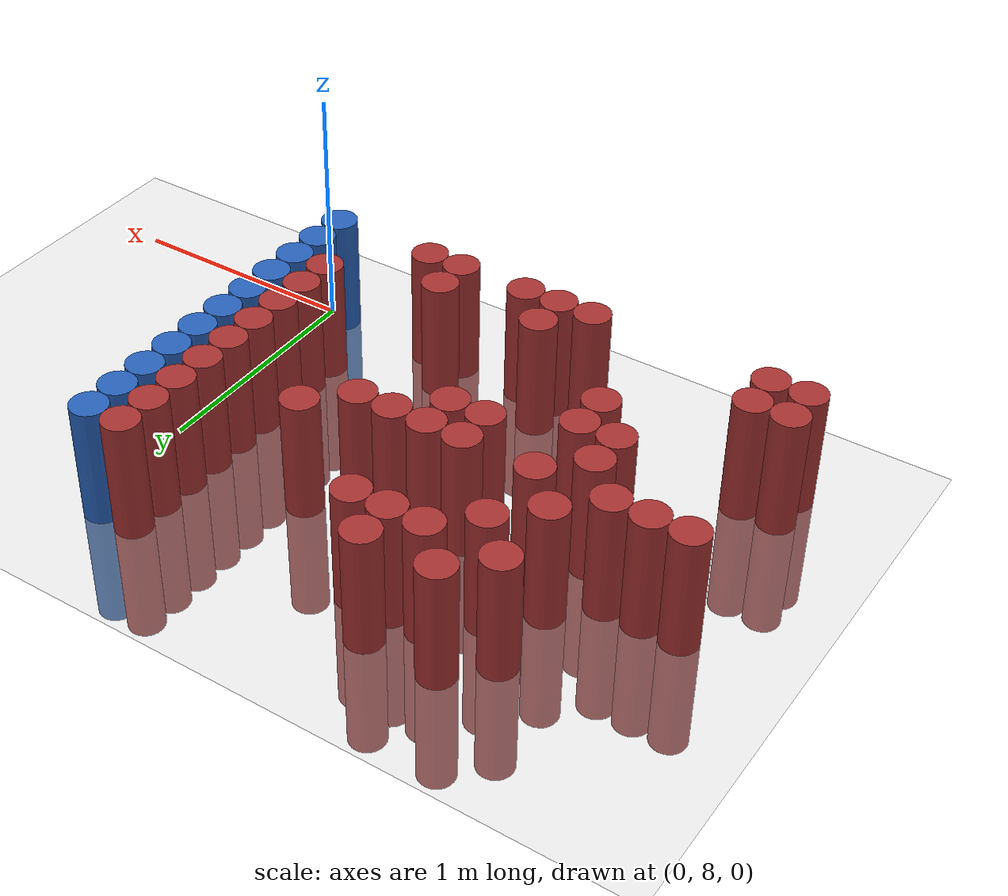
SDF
<sdf version="1.6">
 <world name="default">
  <model name="ground_plane">
   <static>1</static>
   <link name="link">
    <collision name="collision">
     <geometry><plane><normal>0 0 1</normal><size>100 100</size></plane></geometry>
     <surface><friction><ode><mu>100</mu><mu2>50</mu2></ode></friction></surface>
    </collision>
    <visual name="visual">
     <cast_shadows>0</cast_shadows>
     <geometry><plane><normal>0 0 1</normal><size>100 100</size></plane></geometry>
     <material>
      <script><uri>file://media/materials/scripts/gazebo.material</uri><name>Gazebo/Grey</name></script>
     </material>
    </visual>
   </link>
  </model>
  <model name="unit_cylinder_183">
   <static>1</static>
   <pose>-2.175000 8.025000 0.000000 0.000000 0.000000 0.000000</pose>
   <link name="link">
    <inertial>
     <mass>1</mass>
     <inertia><ixx>0.145833</ixx><ixy>0</ixy><ixz>0</ixz><iyy>0.145833</iyy><iyz>0</iyz><izz>0.125</izz></inertia>
    </inertial>
    <collision name="collision">
     <geometry><cylinder><radius>0.075000</radius><length>1</length></cylinder></geometry>
    </collision>
    <visual name="visual">
     <geometry><cylinder><radius>0.075000</radius><length>1</length></cylinder></geometry>
     <material>
      <ambient>0.648000 0.192000 0.192000 1</ambient>
      <diffuse>0.648000 0.192000 0.192000 1</diffuse>
     </material>
     <material>
      <script><name>Gazebo/Grey</name><uri>file://media/materials/scripts/gazebo.material</uri></script>
     </material>
    </visual>
   </link>
  </model>
  <model name="unit_cylinder_184">
   <static>1</static>
   <pose>-2.175000 8.175000 0.000000 0.000000 0.000000 0.000000</pose>
   <link name="link">
    <inertial>
     <mass>1</mass>
     <inertia><ixx>0.145833</ixx><ixy>0</ixy><ixz>0</ixz><iyy>0.145833</iyy><iyz>0</iyz><izz>0.125</izz></inertia>
    </inertial>
    <collision name="collision">
     <geometry><cylinder><radius>0.075000</radius><length>1</length></cylinder></geometry>
    </collision>
    <visual name="visual">
     <geometry><cylinder><radius>0.075000</radius><length>1</length></cylinder></geometry>
     <material>
      <ambient>0.648000 0.192000 0.192000 1</ambient>
      <diffuse>0.648000 0.192000 0.192000 1</diffuse>
     </material>
     <material>
      <script><name>Gazebo/Grey</name><uri>file://media/materials/scripts/gazebo.material</uri></script>
     </material>
    </visual>
   </link>
  </model>
  <model name="unit_cylinder_185">
   <static>1</static>
   <pose>-2.175000 8.925000 0.000000 0.000000 0.000000 0.000000</pose>
   <link name="link">
    <inertial>
     <mass>1</mass>
     <inertia><ixx>0.145833</ixx><ixy>0</ixy><ixz>0</ixz><iyy>0.145833</iyy><iyz>0</iyz><izz>0.125</izz></inertia>
    </inertial>
    <collision name="collision">
     <geometry><cylinder><radius>0.075000</radius><length>1</length></cylinder></geometry>
    </collision>
    <visual name="visual">
     <geometry><cylinder><radius>0.075000</radius><length>1</length></cylinder></geometry>
     <material>
      <ambient>0.648000 0.192000 0.192000 1</ambient>
      <diffuse>0.648000 0.192000 0.192000 1</diffuse>
     </material>
     <material>
      <script><name>Gazebo/Grey</name><uri>file://media/materials/scripts/gazebo.material</uri></script>
     </material>
    </visual>
   </link>
  </model>
  <model name="unit_cylinder_196">
   <static>1</static>
   <pose>-2.025000 8.025000 0.000000 0.000000 0.000000 0.000000</pose>
   <link name="link">
    <inertial>
     <mass>1</mass>
     <inertia><ixx>0.145833</ixx><ixy>0</ixy><ixz>0</ixz><iyy>0.145833</iyy><iyz>0</iyz><izz>0.125</izz></inertia>
    </inertial>
    <collision name="collision">
     <geometry><cylinder><radius>0.075000</radius><length>1</length></cylinder></geometry>
    </collision>
    <visual name="visual">
     <geometry><cylinder><radius>0.075000</radius><length>1</length></cylinder></geometry>
     <material>
      <ambient>0.648000 0.192000 0.192000 1</ambient>
      <diffuse>0.648000 0.192000 0.192000 1</diffuse>
     </material>
     <material>
      <script><name>Gazebo/Grey</name><uri>file://media/materials/scripts/gazebo.material</uri></script>
     </material>
    </visual>
   </link>
  </model>
  <model name="unit_cylinder_197">
   <static>1</static>
   <pose>-2.025000 8.175000 0.000000 0.000000 0.000000 0.000000</pose>
   <link name="link">
    <inertial>
     <mass>1</mass>
     <inertia><ixx>0.145833</ixx><ixy>0</ixy><ixz>0</ixz><iyy>0.145833</iyy><iyz>0</iyz><izz>0.125</izz></inertia>
    </inertial>
    <collision name="collision">
     <geometry><cylinder><radius>0.075000</radius><length>1</length></cylinder></geometry>
    </collision>
    <visual name="visual">
     <geometry><cylinder><radius>0.075000</radius><length>1</length></cylinder></geometry>
     <material>
      <ambient>0.648000 0.192000 0.192000 1</ambient>
      <diffuse>0.648000 0.192000 0.192000 1</diffuse>
     </material>
     <material>
      <script><name>Gazebo/Grey</name><uri>file://media/materials/scripts/gazebo.material</uri></script>
     </material>
    </visual>
   </link>
  </model>
  <model name="unit_cylinder_198">
   <static>1</static>
   <pose>-2.025000 8.925000 0.000000 0.000000 0.000000 0.000000</pose>
   <link name="link">
    <inertial>
     <mass>1</mass>
     <inertia><ixx>0.145833</ixx><ixy>0</ixy><ixz>0</ixz><iyy>0.145833</iyy><iyz>0</iyz><izz>0.125</izz></inertia>
    </inertial>
    <collision name="collision">
     <geometry><cylinder><radius>0.075000</radius><length>1</length></cylinder></geometry>
    </collision>
    <visual name="visual">
     <geometry><cylinder><radius>0.075000</radius><length>1</length></cylinder></geometry>
     <material>
      <ambient>0.648000 0.192000 0.192000 1</ambient>
      <diffuse>0.648000 0.192000 0.192000 1</diffuse>
     </material>
     <material>
      <script><name>Gazebo/Grey</name><uri>file://media/materials/scripts/gazebo.material</uri></script>
     </material>
    </visual>
   </link>
  </model>
  <model name="unit_cylinder_203">
   <static>1</static>
   <pose>-1.875000 8.925000 0.000000 0.000000 0.000000 0.000000</pose>
   <link name="link">
    <inertial>
     <mass>1</mass>
     <inertia><ixx>0.145833</ixx><ixy>0</ixy><ixz>0</ixz><iyy>0.145833</iyy><iyz>0</iyz><izz>0.125</izz></inertia>
    </inertial>
    <collision name="collision">
     <geometry><cylinder><radius>0.075000</radius><length>1</length></cylinder></geometry>
    </collision>
    <visual name="visual">
     <geometry><cylinder><radius>0.075000</radius><length>1</length></cylinder></geometry>
     <material>
      <ambient>0.648000 0.192000 0.192000 1</ambient>
      <diffuse>0.648000 0.192000 0.192000 1</diffuse>
     </material>
     <material>
      <script><name>Gazebo/Grey</name><uri>file://media/materials/scripts/gazebo.material</uri></script>
     </material>
    </visual>
   </link>
  </model>
  <model name="unit_cylinder_206">
   <static>1</static>
   <pose>-1.725000 8.625000 0.000000 0.000000 0.000000 0.000000</pose>
   <link name="link">
    <inertial>
     <mass>1</mass>
     <inertia><ixx>0.145833</ixx><ixy>0</ixy><ixz>0</ixz><iyy>0.145833</iyy><iyz>0</iyz><izz>0.125</izz></inertia>
    </inertial>
    <collision name="collision">
     <geometry><cylinder><radius>0.075000</radius><length>1</length></cylinder></geometry>
    </collision>
    <visual name="visual">
     <geometry><cylinder><radius>0.075000</radius><length>1</length></cylinder></geometry>
     <material>
      <ambient>0.648000 0.192000 0.192000 1</ambient>
      <diffuse>0.648000 0.192000 0.192000 1</diffuse>
     </material>
     <material>
      <script><name>Gazebo/Grey</name><uri>file://media/materials/scripts/gazebo.material</uri></script>
     </material>
    </visual>
   </link>
  </model>
  <model name="unit_cylinder_207">
   <static>1</static>
   <pose>-1.725000 8.775000 0.000000 0.000000 0.000000 0.000000</pose>
   <link name="link">
    <inertial>
     <mass>1</mass>
     <inertia><ixx>0.145833</ixx><ixy>0</ixy><ixz>0</ixz><iyy>0.145833</iyy><iyz>0</iyz><izz>0.125</izz></inertia>
    </inertial>
    <collision name="collision">
     <geometry><cylinder><radius>0.075000</radius><length>1</length></cylinder></geometry>
    </collision>
    <visual name="visual">
     <geometry><cylinder><radius>0.075000</radius><length>1</length></cylinder></geometry>
     <material>
      <ambient>0.648000 0.192000 0.192000 1</ambient>
      <diffuse>0.648000 0.192000 0.192000 1</diffuse>
     </material>
     <material>
      <script><name>Gazebo/Grey</name><uri>file://media/materials/scripts/gazebo.material</uri></script>
     </material>
    </visual>
   </link>
  </model>
  <model name="unit_cylinder_208">
   <static>1</static>
   <pose>-1.725000 9.075000 0.000000 0.000000 0.000000 0.000000</pose>
   <link name="link">
    <inertial>
     <mass>1</mass>
     <inertia><ixx>0.145833</ixx><ixy>0</ixy><ixz>0</ixz><iyy>0.145833</iyy><iyz>0</iyz><izz>0.125</izz></inertia>
    </inertial>
    <collision name="collision">
     <geometry><cylinder><radius>0.075000</radius><length>1</length></cylinder></geometry>
    </collision>
    <visual name="visual">
     <geometry><cylinder><radius>0.075000</radius><length>1</length></cylinder></geometry>
     <material>
      <ambient>0.648000 0.192000 0.192000 1</ambient>
      <diffuse>0.648000 0.192000 0.192000 1</diffuse>
     </material>
     <material>
      <script><name>Gazebo/Grey</name><uri>file://media/materials/scripts/gazebo.material</uri></script>
     </material>
    </visual>
   </link>
  </model>
  <model name="unit_cylinder_209">
   <static>1</static>
   <pose>-1.725000 9.375000 0.000000 0.000000 0.000000 0.000000</pose>
   <link name="link">
    <inertial>
     <mass>1</mass>
     <inertia><ixx>0.145833</ixx><ixy>0</ixy><ixz>0</ixz><iyy>0.145833</iyy><iyz>0</iyz><izz>0.125</izz></inertia>
    </inertial>
    <collision name="collision">
     <geometry><cylinder><radius>0.075000</radius><length>1</length></cylinder></geometry>
    </collision>
    <visual name="visual">
     <geometry><cylinder><radius>0.075000</radius><length>1</length></cylinder></geometry>
     <material>
      <ambient>0.648000 0.192000 0.192000 1</ambient>
      <diffuse>0.648000 0.192000 0.192000 1</diffuse>
     </material>
     <material>
      <script><name>Gazebo/Grey</name><uri>file://media/materials/scripts/gazebo.material</uri></script>
     </material>
    </visual>
   </link>
  </model>
  <model name="unit_cylinder_217">
   <static>1</static>
   <pose>-1.575000 8.475000 0.000000 0.000000 0.000000 0.000000</pose>
   <link name="link">
    <inertial>
     <mass>1</mass>
     <inertia><ixx>0.145833</ixx><ixy>0</ixy><ixz>0</ixz><iyy>0.145833</iyy><iyz>0</iyz><izz>0.125</izz></inertia>
    </inertial>
    <collision name="collision">
     <geometry><cylinder><radius>0.075000</radius><length>1</length></cylinder></geometry>
    </collision>
    <visual name="visual">
     <geometry><cylinder><radius>0.075000</radius><length>1</length></cylinder></geometry>
     <material>
      <ambient>0.648000 0.192000 0.192000 1</ambient>
      <diffuse>0.648000 0.192000 0.192000 1</diffuse>
     </material>
     <material>
      <script><name>Gazebo/Grey</name><uri>file://media/materials/scripts/gazebo.material</uri></script>
     </material>
    </visual>
   </link>
  </model>
  <model name="unit_cylinder_218">
   <static>1</static>
   <pose>-1.575000 8.625000 0.000000 0.000000 0.000000 0.000000</pose>
   <link name="link">
    <inertial>
     <mass>1</mass>
     <inertia><ixx>0.145833</ixx><ixy>0</ixy><ixz>0</ixz><iyy>0.145833</iyy><iyz>0</iyz><izz>0.125</izz></inertia>
    </inertial>
    <collision name="collision">
     <geometry><cylinder><radius>0.075000</radius><length>1</length></cylinder></geometry>
    </collision>
    <visual name="visual">
     <geometry><cylinder><radius>0.075000</radius><length>1</length></cylinder></geometry>
     <material>
      <ambient>0.648000 0.192000 0.192000 1</ambient>
      <diffuse>0.648000 0.192000 0.192000 1</diffuse>
     </material>
     <material>
      <script><name>Gazebo/Grey</name><uri>file://media/materials/scripts/gazebo.material</uri></script>
     </material>
    </visual>
   </link>
  </model>
  <model name="unit_cylinder_219">
   <static>1</static>
   <pose>-1.575000 8.925000 0.000000 0.000000 0.000000 0.000000</pose>
   <link name="link">
    <inertial>
     <mass>1</mass>
     <inertia><ixx>0.145833</ixx><ixy>0</ixy><ixz>0</ixz><iyy>0.145833</iyy><iyz>0</iyz><izz>0.125</izz></inertia>
    </inertial>
    <collision name="collision">
     <geometry><cylinder><radius>0.075000</radius><length>1</length></cylinder></geometry>
    </collision>
    <visual name="visual">
     <geometry><cylinder><radius>0.075000</radius><length>1</length></cylinder></geometry>
     <material>
      <ambient>0.648000 0.192000 0.192000 1</ambient>
      <diffuse>0.648000 0.192000 0.192000 1</diffuse>
     </material>
     <material>
      <script><name>Gazebo/Grey</name><uri>file://media/materials/scripts/gazebo.material</uri></script>
     </material>
    </visual>
   </link>
  </model>
  <model name="unit_cylinder_220">
   <static>1</static>
   <pose>-1.575000 9.225000 0.000000 0.000000 0.000000 0.000000</pose>
   <link name="link">
    <inertial>
     <mass>1</mass>
     <inertia><ixx>0.145833</ixx><ixy>0</ixy><ixz>0</ixz><iyy>0.145833</iyy><iyz>0</iyz><izz>0.125</izz></inertia>
    </inertial>
    <collision name="collision">
     <geometry><cylinder><radius>0.075000</radius><length>1</length></cylinder></geometry>
    </collision>
    <visual name="visual">
     <geometry><cylinder><radius>0.075000</radius><length>1</length></cylinder></geometry>
     <material>
      <ambient>0.648000 0.192000 0.192000 1</ambient>
      <diffuse>0.648000 0.192000 0.192000 1</diffuse>
     </material>
     <material>
      <script><name>Gazebo/Grey</name><uri>file://media/materials/scripts/gazebo.material</uri></script>
     </material>
    </visual>
   </link>
  </model>
  <model name="unit_cylinder_221">
   <static>1</static>
   <pose>-1.575000 9.525000 0.000000 0.000000 0.000000 0.000000</pose>
   <link name="link">
    <inertial>
     <mass>1</mass>
     <inertia><ixx>0.145833</ixx><ixy>0</ixy><ixz>0</ixz><iyy>0.145833</iyy><iyz>0</iyz><izz>0.125</izz></inertia>
    </inertial>
    <collision name="collision">
     <geometry><cylinder><radius>0.075000</radius><length>1</length></cylinder></geometry>
    </collision>
    <visual name="visual">
     <geometry><cylinder><radius>0.075000</radius><length>1</length></cylinder></geometry>
     <material>
      <ambient>0.648000 0.192000 0.192000 1</ambient>
      <diffuse>0.648000 0.192000 0.192000 1</diffuse>
     </material>
     <material>
      <script><name>Gazebo/Grey</name><uri>file://media/materials/scripts/gazebo.material</uri></script>
     </material>
    </visual>
   </link>
  </model>
  <model name="unit_cylinder_230">
   <static>1</static>
   <pose>-1.425000 9.375000 0.000000 0.000000 0.000000 0.000000</pose>
   <link name="link">
    <inertial>
     <mass>1</mass>
     <inertia><ixx>0.145833</ixx><ixy>0</ixy><ixz>0</ixz><iyy>0.145833</iyy><iyz>0</iyz><izz>0.125</izz></inertia>
    </inertial>
    <collision name="collision">
     <geometry><cylinder><radius>0.075000</radius><length>1</length></cylinder></geometry>
    </collision>
    <visual name="visual">
     <geometry><cylinder><radius>0.075000</radius><length>1</length></cylinder></geometry>
     <material>
      <ambient>0.648000 0.192000 0.192000 1</ambient>
      <diffuse>0.648000 0.192000 0.192000 1</diffuse>
     </material>
     <material>
      <script><name>Gazebo/Grey</name><uri>file://media/materials/scripts/gazebo.material</uri></script>
     </material>
    </visual>
   </link>
  </model>
  <model name="unit_cylinder_239">
   <static>1</static>
   <pose>-1.275000 8.025000 0.000000 0.000000 0.000000 0.000000</pose>
   <link name="link">
    <inertial>
     <mass>1</mass>
     <inertia><ixx>0.145833</ixx><ixy>0</ixy><ixz>0</ixz><iyy>0.145833</iyy><iyz>0</iyz><izz>0.125</izz></inertia>
    </inertial>
    <collision name="collision">
     <geometry><cylinder><radius>0.075000</radius><length>1</length></cylinder></geometry>
    </collision>
    <visual name="visual">
     <geometry><cylinder><radius>0.075000</radius><length>1</length></cylinder></geometry>
     <material>
      <ambient>0.648000 0.192000 0.192000 1</ambient>
      <diffuse>0.648000 0.192000 0.192000 1</diffuse>
     </material>
     <material>
      <script><name>Gazebo/Grey</name><uri>file://media/materials/scripts/gazebo.material</uri></script>
     </material>
    </visual>
   </link>
  </model>
  <model name="unit_cylinder_240">
   <static>1</static>
   <pose>-1.275000 8.775000 0.000000 0.000000 0.000000 0.000000</pose>
   <link name="link">
    <inertial>
     <mass>1</mass>
     <inertia><ixx>0.145833</ixx><ixy>0</ixy><ixz>0</ixz><iyy>0.145833</iyy><iyz>0</iyz><izz>0.125</izz></inertia>
    </inertial>
    <collision name="collision">
     <geometry><cylinder><radius>0.075000</radius><length>1</length></cylinder></geometry>
    </collision>
    <visual name="visual">
     <geometry><cylinder><radius>0.075000</radius><length>1</length></cylinder></geometry>
     <material>
      <ambient>0.648000 0.192000 0.192000 1</ambient>
      <diffuse>0.648000 0.192000 0.192000 1</diffuse>
     </material>
     <material>
      <script><name>Gazebo/Grey</name><uri>file://media/materials/scripts/gazebo.material</uri></script>
     </material>
    </visual>
   </link>
  </model>
  <model name="unit_cylinder_241">
   <static>1</static>
   <pose>-1.275000 8.925000 0.000000 0.000000 0.000000 0.000000</pose>
   <link name="link">
    <inertial>
     <mass>1</mass>
     <inertia><ixx>0.145833</ixx><ixy>0</ixy><ixz>0</ixz><iyy>0.145833</iyy><iyz>0</iyz><izz>0.125</izz></inertia>
    </inertial>
    <collision name="collision">
     <geometry><cylinder><radius>0.075000</radius><length>1</length></cylinder></geometry>
    </collision>
    <visual name="visual">
     <geometry><cylinder><radius>0.075000</radius><length>1</length></cylinder></geometry>
     <material>
      <ambient>0.648000 0.192000 0.192000 1</ambient>
      <diffuse>0.648000 0.192000 0.192000 1</diffuse>
     </material>
     <material>
      <script><name>Gazebo/Grey</name><uri>file://media/materials/scripts/gazebo.material</uri></script>
     </material>
    </visual>
   </link>
  </model>
  <model name="unit_cylinder_242">
   <static>1</static>
   <pose>-1.275000 9.375000 0.000000 0.000000 0.000000 0.000000</pose>
   <link name="link">
    <inertial>
     <mass>1</mass>
     <inertia><ixx>0.145833</ixx><ixy>0</ixy><ixz>0</ixz><iyy>0.145833</iyy><iyz>0</iyz><izz>0.125</izz></inertia>
    </inertial>
    <collision name="collision">
     <geometry><cylinder><radius>0.075000</radius><length>1</length></cylinder></geometry>
    </collision>
    <visual name="visual">
     <geometry><cylinder><radius>0.075000</radius><length>1</length></cylinder></geometry>
     <material>
      <ambient>0.648000 0.192000 0.192000 1</ambient>
      <diffuse>0.648000 0.192000 0.192000 1</diffuse>
     </material>
     <material>
      <script><name>Gazebo/Grey</name><uri>file://media/materials/scripts/gazebo.material</uri></script>
     </material>
    </visual>
   </link>
  </model>
  <model name="unit_cylinder_243">
   <static>1</static>
   <pose>-1.275000 9.525000 0.000000 0.000000 0.000000 0.000000</pose>
   <link name="link">
    <inertial>
     <mass>1</mass>
     <inertia><ixx>0.145833</ixx><ixy>0</ixy><ixz>0</ixz><iyy>0.145833</iyy><iyz>0</iyz><izz>0.125</izz></inertia>
    </inertial>
    <collision name="collision">
     <geometry><cylinder><radius>0.075000</radius><length>1</length></cylinder></geometry>
    </collision>
    <visual name="visual">
     <geometry><cylinder><radius>0.075000</radius><length>1</length></cylinder></geometry>
     <material>
      <ambient>0.648000 0.192000 0.192000 1</ambient>
      <diffuse>0.648000 0.192000 0.192000 1</diffuse>
     </material>
     <material>
      <script><name>Gazebo/Grey</name><uri>file://media/materials/scripts/gazebo.material</uri></script>
     </material>
    </visual>
   </link>
  </model>
  <model name="unit_cylinder_247">
   <static>1</static>
   <pose>-1.125000 8.025000 0.000000 0.000000 0.000000 0.000000</pose>
   <link name="link">
    <inertial>
     <mass>1</mass>
     <inertia><ixx>0.145833</ixx><ixy>0</ixy><ixz>0</ixz><iyy>0.145833</iyy><iyz>0</iyz><izz>0.125</izz></inertia>
    </inertial>
    <collision name="collision">
     <geometry><cylinder><radius>0.075000</radius><length>1</length></cylinder></geometry>
    </collision>
    <visual name="visual">
     <geometry><cylinder><radius>0.075000</radius><length>1</length></cylinder></geometry>
     <material>
      <ambient>0.648000 0.192000 0.192000 1</ambient>
      <diffuse>0.648000 0.192000 0.192000 1</diffuse>
     </material>
     <material>
      <script><name>Gazebo/Grey</name><uri>file://media/materials/scripts/gazebo.material</uri></script>
     </material>
    </visual>
   </link>
  </model>
  <model name="unit_cylinder_248">
   <static>1</static>
   <pose>-1.125000 8.175000 0.000000 0.000000 0.000000 0.000000</pose>
   <link name="link">
    <inertial>
     <mass>1</mass>
     <inertia><ixx>0.145833</ixx><ixy>0</ixy><ixz>0</ixz><iyy>0.145833</iyy><iyz>0</iyz><izz>0.125</izz></inertia>
    </inertial>
    <collision name="collision">
     <geometry><cylinder><radius>0.075000</radius><length>1</length></cylinder></geometry>
    </collision>
    <visual name="visual">
     <geometry><cylinder><radius>0.075000</radius><length>1</length></cylinder></geometry>
     <material>
      <ambient>0.648000 0.192000 0.192000 1</ambient>
      <diffuse>0.648000 0.192000 0.192000 1</diffuse>
     </material>
     <material>
      <script><name>Gazebo/Grey</name><uri>file://media/materials/scripts/gazebo.material</uri></script>
     </material>
    </visual>
   </link>
  </model>
  <model name="unit_cylinder_249">
   <static>1</static>
   <pose>-1.125000 8.775000 0.000000 0.000000 0.000000 0.000000</pose>
   <link name="link">
    <inertial>
     <mass>1</mass>
     <inertia><ixx>0.145833</ixx><ixy>0</ixy><ixz>0</ixz><iyy>0.145833</iyy><iyz>0</iyz><izz>0.125</izz></inertia>
    </inertial>
    <collision name="collision">
     <geometry><cylinder><radius>0.075000</radius><length>1</length></cylinder></geometry>
    </collision>
    <visual name="visual">
     <geometry><cylinder><radius>0.075000</radius><length>1</length></cylinder></geometry>
     <material>
      <ambient>0.648000 0.192000 0.192000 1</ambient>
      <diffuse>0.648000 0.192000 0.192000 1</diffuse>
     </material>
     <material>
      <script><name>Gazebo/Grey</name><uri>file://media/materials/scripts/gazebo.material</uri></script>
     </material>
    </visual>
   </link>
  </model>
  <model name="unit_cylinder_250">
   <static>1</static>
   <pose>-1.125000 8.925000 0.000000 0.000000 0.000000 0.000000</pose>
   <link name="link">
    <inertial>
     <mass>1</mass>
     <inertia><ixx>0.145833</ixx><ixy>0</ixy><ixz>0</ixz><iyy>0.145833</iyy><iyz>0</iyz><izz>0.125</izz></inertia>
    </inertial>
    <collision name="collision">
     <geometry><cylinder><radius>0.075000</radius><length>1</length></cylinder></geometry>
    </collision>
    <visual name="visual">
     <geometry><cylinder><radius>0.075000</radius><length>1</length></cylinder></geometry>
     <material>
      <ambient>0.648000 0.192000 0.192000 1</ambient>
      <diffuse>0.648000 0.192000 0.192000 1</diffuse>
     </material>
     <material>
      <script><name>Gazebo/Grey</name><uri>file://media/materials/scripts/gazebo.material</uri></script>
     </material>
    </visual>
   </link>
  </model>
  <model name="unit_cylinder_251">
   <static>1</static>
   <pose>-1.125000 9.375000 0.000000 0.000000 0.000000 0.000000</pose>
   <link name="link">
    <inertial>
     <mass>1</mass>
     <inertia><ixx>0.145833</ixx><ixy>0</ixy><ixz>0</ixz><iyy>0.145833</iyy><iyz>0</iyz><izz>0.125</izz></inertia>
    </inertial>
    <collision name="collision">
     <geometry><cylinder><radius>0.075000</radius><length>1</length></cylinder></geometry>
    </collision>
    <visual name="visual">
     <geometry><cylinder><radius>0.075000</radius><length>1</length></cylinder></geometry>
     <material>
      <ambient>0.648000 0.192000 0.192000 1</ambient>
      <diffuse>0.648000 0.192000 0.192000 1</diffuse>
     </material>
     <material>
      <script><name>Gazebo/Grey</name><uri>file://media/materials/scripts/gazebo.material</uri></script>
     </material>
    </visual>
   </link>
  </model>
  <model name="unit_cylinder_257">
   <static>1</static>
   <pose>-0.975000 8.025000 0.000000 0.000000 0.000000 0.000000</pose>
   <link name="link">
    <inertial>
     <mass>1</mass>
     <inertia><ixx>0.145833</ixx><ixy>0</ixy><ixz>0</ixz><iyy>0.145833</iyy><iyz>0</iyz><izz>0.125</izz></inertia>
    </inertial>
    <collision name="collision">
     <geometry><cylinder><radius>0.075000</radius><length>1</length></cylinder></geometry>
    </collision>
    <visual name="visual">
     <geometry><cylinder><radius>0.075000</radius><length>1</length></cylinder></geometry>
     <material>
      <ambient>0.648000 0.192000 0.192000 1</ambient>
      <diffuse>0.648000 0.192000 0.192000 1</diffuse>
     </material>
     <material>
      <script><name>Gazebo/Grey</name><uri>file://media/materials/scripts/gazebo.material</uri></script>
     </material>
    </visual>
   </link>
  </model>
  <model name="unit_cylinder_258">
   <static>1</static>
   <pose>-0.975000 8.925000 0.000000 0.000000 0.000000 0.000000</pose>
   <link name="link">
    <inertial>
     <mass>1</mass>
     <inertia><ixx>0.145833</ixx><ixy>0</ixy><ixz>0</ixz><iyy>0.145833</iyy><iyz>0</iyz><izz>0.125</izz></inertia>
    </inertial>
    <collision name="collision">
     <geometry><cylinder><radius>0.075000</radius><length>1</length></cylinder></geometry>
    </collision>
    <visual name="visual">
     <geometry><cylinder><radius>0.075000</radius><length>1</length></cylinder></geometry>
     <material>
      <ambient>0.648000 0.192000 0.192000 1</ambient>
      <diffuse>0.648000 0.192000 0.192000 1</diffuse>
     </material>
     <material>
      <script><name>Gazebo/Grey</name><uri>file://media/materials/scripts/gazebo.material</uri></script>
     </material>
    </visual>
   </link>
  </model>
  <model name="unit_cylinder_261">
   <static>1</static>
   <pose>-0.825000 8.925000 0.000000 0.000000 0.000000 0.000000</pose>
   <link name="link">
    <inertial>
     <mass>1</mass>
     <inertia><ixx>0.145833</ixx><ixy>0</ixy><ixz>0</ixz><iyy>0.145833</iyy><iyz>0</iyz><izz>0.125</izz></inertia>
    </inertial>
    <collision name="collision">
     <geometry><cylinder><radius>0.075000</radius><length>1</length></cylinder></geometry>
    </collision>
    <visual name="visual">
     <geometry><cylinder><radius>0.075000</radius><length>1</length></cylinder></geometry>
     <material>
      <ambient>0.648000 0.192000 0.192000 1</ambient>
      <diffuse>0.648000 0.192000 0.192000 1</diffuse>
     </material>
     <material>
      <script><name>Gazebo/Grey</name><uri>file://media/materials/scripts/gazebo.material</uri></script>
     </material>
    </visual>
   </link>
  </model>
  <model name="unit_cylinder_264">
   <static>1</static>
   <pose>-0.675000 8.025000 0.000000 0.000000 0.000000 0.000000</pose>
   <link name="link">
    <inertial>
     <mass>1</mass>
     <inertia><ixx>0.145833</ixx><ixy>0</ixy><ixz>0</ixz><iyy>0.145833</iyy><iyz>0</iyz><izz>0.125</izz></inertia>
    </inertial>
    <collision name="collision">
     <geometry><cylinder><radius>0.075000</radius><length>1</length></cylinder></geometry>
    </collision>
    <visual name="visual">
     <geometry><cylinder><radius>0.075000</radius><length>1</length></cylinder></geometry>
     <material>
      <ambient>0.648000 0.192000 0.192000 1</ambient>
      <diffuse>0.648000 0.192000 0.192000 1</diffuse>
     </material>
     <material>
      <script><name>Gazebo/Grey</name><uri>file://media/materials/scripts/gazebo.material</uri></script>
     </material>
    </visual>
   </link>
  </model>
  <model name="unit_cylinder_265">
   <static>1</static>
   <pose>-0.675000 8.175000 0.000000 0.000000 0.000000 0.000000</pose>
   <link name="link">
    <inertial>
     <mass>1</mass>
     <inertia><ixx>0.145833</ixx><ixy>0</ixy><ixz>0</ixz><iyy>0.145833</iyy><iyz>0</iyz><izz>0.125</izz></inertia>
    </inertial>
    <collision name="collision">
     <geometry><cylinder><radius>0.075000</radius><length>1</length></cylinder></geometry>
    </collision>
    <visual name="visual">
     <geometry><cylinder><radius>0.075000</radius><length>1</length></cylinder></geometry>
     <material>
      <ambient>0.648000 0.192000 0.192000 1</ambient>
      <diffuse>0.648000 0.192000 0.192000 1</diffuse>
     </material>
     <material>
      <script><name>Gazebo/Grey</name><uri>file://media/materials/scripts/gazebo.material</uri></script>
     </material>
    </visual>
   </link>
  </model>
  <model name="unit_cylinder_266">
   <static>1</static>
   <pose>-0.675000 9.075000 0.000000 0.000000 0.000000 0.000000</pose>
   <link name="link">
    <inertial>
     <mass>1</mass>
     <inertia><ixx>0.145833</ixx><ixy>0</ixy><ixz>0</ixz><iyy>0.145833</iyy><iyz>0</iyz><izz>0.125</izz></inertia>
    </inertial>
    <collision name="collision">
     <geometry><cylinder><radius>0.075000</radius><length>1</length></cylinder></geometry>
    </collision>
    <visual name="visual">
     <geometry><cylinder><radius>0.075000</radius><length>1</length></cylinder></geometry>
     <material>
      <ambient>0.648000 0.192000 0.192000 1</ambient>
      <diffuse>0.648000 0.192000 0.192000 1</diffuse>
     </material>
     <material>
      <script><name>Gazebo/Grey</name><uri>file://media/materials/scripts/gazebo.material</uri></script>
     </material>
    </visual>
   </link>
  </model>
  <model name="unit_cylinder_271">
   <static>1</static>
   <pose>-0.525000 8.025000 0.000000 0.000000 0.000000 0.000000</pose>
   <link name="link">
    <inertial>
     <mass>1</mass>
     <inertia><ixx>0.145833</ixx><ixy>0</ixy><ixz>0</ixz><iyy>0.145833</iyy><iyz>0</iyz><izz>0.125</izz></inertia>
    </inertial>
    <collision name="collision">
     <geometry><cylinder><radius>0.075000</radius><length>1</length></cylinder></geometry>
    </collision>
    <visual name="visual">
     <geometry><cylinder><radius>0.075000</radius><length>1</length></cylinder></geometry>
     <material>
      <ambient>0.648000 0.192000 0.192000 1</ambient>
      <diffuse>0.648000 0.192000 0.192000 1</diffuse>
     </material>
     <material>
      <script><name>Gazebo/Grey</name><uri>file://media/materials/scripts/gazebo.material</uri></script>
     </material>
    </visual>
   </link>
  </model>
  <model name="unit_cylinder_286">
   <static>1</static>
   <pose>-0.225000 8.325000 0.000000 0.000000 0.000000 0.000000</pose>
   <link name="link">
    <inertial>
     <mass>1</mass>
     <inertia><ixx>0.145833</ixx><ixy>0</ixy><ixz>0</ixz><iyy>0.145833</iyy><iyz>0</iyz><izz>0.125</izz></inertia>
    </inertial>
    <collision name="collision">
     <geometry><cylinder><radius>0.075000</radius><length>1</length></cylinder></geometry>
    </collision>
    <visual name="visual">
     <geometry><cylinder><radius>0.075000</radius><length>1</length></cylinder></geometry>
     <material>
      <ambient>0.648000 0.192000 0.192000 1</ambient>
      <diffuse>0.648000 0.192000 0.192000 1</diffuse>
     </material>
     <material>
      <script><name>Gazebo/Grey</name><uri>file://media/materials/scripts/gazebo.material</uri></script>
     </material>
    </visual>
   </link>
  </model>
  <model name="unit_cylinder_287">
   <static>1</static>
   <pose>-0.225000 8.475000 0.000000 0.000000 0.000000 0.000000</pose>
   <link name="link">
    <inertial>
     <mass>1</mass>
     <inertia><ixx>0.145833</ixx><ixy>0</ixy><ixz>0</ixz><iyy>0.145833</iyy><iyz>0</iyz><izz>0.125</izz></inertia>
    </inertial>
    <collision name="collision">
     <geometry><cylinder><radius>0.075000</radius><length>1</length></cylinder></geometry>
    </collision>
    <visual name="visual">
     <geometry><cylinder><radius>0.075000</radius><length>1</length></cylinder></geometry>
     <material>
      <ambient>0.648000 0.192000 0.192000 1</ambient>
      <diffuse>0.648000 0.192000 0.192000 1</diffuse>
     </material>
     <material>
      <script><name>Gazebo/Grey</name><uri>file://media/materials/scripts/gazebo.material</uri></script>
     </material>
    </visual>
   </link>
  </model>
  <model name="unit_cylinder_288">
   <static>1</static>
   <pose>-0.225000 8.625000 0.000000 0.000000 0.000000 0.000000</pose>
   <link name="link">
    <inertial>
     <mass>1</mass>
     <inertia><ixx>0.145833</ixx><ixy>0</ixy><ixz>0</ixz><iyy>0.145833</iyy><iyz>0</iyz><izz>0.125</izz></inertia>
    </inertial>
    <collision name="collision">
     <geometry><cylinder><radius>0.075000</radius><length>1</length></cylinder></geometry>
    </collision>
    <visual name="visual">
     <geometry><cylinder><radius>0.075000</radius><length>1</length></cylinder></geometry>
     <material>
      <ambient>0.648000 0.192000 0.192000 1</ambient>
      <diffuse>0.648000 0.192000 0.192000 1</diffuse>
     </material>
     <material>
      <script><name>Gazebo/Grey</name><uri>file://media/materials/scripts/gazebo.material</uri></script>
     </material>
    </visual>
   </link>
  </model>
  <model name="unit_cylinder_289">
   <static>1</static>
   <pose>-0.225000 8.775000 0.000000 0.000000 0.000000 0.000000</pose>
   <link name="link">
    <inertial>
     <mass>1</mass>
     <inertia><ixx>0.145833</ixx><ixy>0</ixy><ixz>0</ixz><iyy>0.145833</iyy><iyz>0</iyz><izz>0.125</izz></inertia>
    </inertial>
    <collision name="collision">
     <geometry><cylinder><radius>0.075000</radius><length>1</length></cylinder></geometry>
    </collision>
    <visual name="visual">
     <geometry><cylinder><radius>0.075000</radius><length>1</length></cylinder></geometry>
     <material>
      <ambient>0.648000 0.192000 0.192000 1</ambient>
      <diffuse>0.648000 0.192000 0.192000 1</diffuse>
     </material>
     <material>
      <script><name>Gazebo/Grey</name><uri>file://media/materials/scripts/gazebo.material</uri></script>
     </material>
    </visual>
   </link>
  </model>
  <model name="unit_cylinder_290">
   <static>1</static>
   <pose>-0.225000 8.925000 0.000000 0.000000 0.000000 0.000000</pose>
   <link name="link">
    <inertial>
     <mass>1</mass>
     <inertia><ixx>0.145833</ixx><ixy>0</ixy><ixz>0</ixz><iyy>0.145833</iyy><iyz>0</iyz><izz>0.125</izz></inertia>
    </inertial>
    <collision name="collision">
     <geometry><cylinder><radius>0.075000</radius><length>1</length></cylinder></geometry>
    </collision>
    <visual name="visual">
     <geometry><cylinder><radius>0.075000</radius><length>1</length></cylinder></geometry>
     <material>
      <ambient>0.648000 0.192000 0.192000 1</ambient>
      <diffuse>0.648000 0.192000 0.192000 1</diffuse>
     </material>
     <material>
      <script><name>Gazebo/Grey</name><uri>file://media/materials/scripts/gazebo.material</uri></script>
     </material>
    </visual>
   </link>
  </model>
  <model name="unit_cylinder_291">
   <static>1</static>
   <pose>-0.225000 9.075000 0.000000 0.000000 0.000000 0.000000</pose>
   <link name="link">
    <inertial>
     <mass>1</mass>
     <inertia><ixx>0.145833</ixx><ixy>0</ixy><ixz>0</ixz><iyy>0.145833</iyy><iyz>0</iyz><izz>0.125</izz></inertia>
    </inertial>
    <collision name="collision">
     <geometry><cylinder><radius>0.075000</radius><length>1</length></cylinder></geometry>
    </collision>
    <visual name="visual">
     <geometry><cylinder><radius>0.075000</radius><length>1</length></cylinder></geometry>
     <material>
      <ambient>0.648000 0.192000 0.192000 1</ambient>
      <diffuse>0.648000 0.192000 0.192000 1</diffuse>
     </material>
     <material>
      <script><name>Gazebo/Grey</name><uri>file://media/materials/scripts/gazebo.material</uri></script>
     </material>
    </visual>
   </link>
  </model>
  <model name="unit_cylinder_292">
   <static>1</static>
   <pose>-0.225000 9.225000 0.000000 0.000000 0.000000 0.000000</pose>
   <link name="link">
    <inertial>
     <mass>1</mass>
     <inertia><ixx>0.145833</ixx><ixy>0</ixy><ixz>0</ixz><iyy>0.145833</iyy><iyz>0</iyz><izz>0.125</izz></inertia>
    </inertial>
    <collision name="collision">
     <geometry><cylinder><radius>0.075000</radius><length>1</length></cylinder></geometry>
    </collision>
    <visual name="visual">
     <geometry><cylinder><radius>0.075000</radius><length>1</length></cylinder></geometry>
     <material>
      <ambient>0.648000 0.192000 0.192000 1</ambient>
      <diffuse>0.648000 0.192000 0.192000 1</diffuse>
     </material>
     <material>
      <script><name>Gazebo/Grey</name><uri>file://media/materials/scripts/gazebo.material</uri></script>
     </material>
    </visual>
   </link>
  </model>
  <model name="unit_cylinder_293">
   <static>1</static>
   <pose>-0.225000 9.375000 0.000000 0.000000 0.000000 0.000000</pose>
   <link name="link">
    <inertial>
     <mass>1</mass>
     <inertia><ixx>0.145833</ixx><ixy>0</ixy><ixz>0</ixz><iyy>0.145833</iyy><iyz>0</iyz><izz>0.125</izz></inertia>
    </inertial>
    <collision name="collision">
     <geometry><cylinder><radius>0.075000</radius><length>1</length></cylinder></geometry>
    </collision>
    <visual name="visual">
     <geometry><cylinder><radius>0.075000</radius><length>1</length></cylinder></geometry>
     <material>
      <ambient>0.648000 0.192000 0.192000 1</ambient>
      <diffuse>0.648000 0.192000 0.192000 1</diffuse>
     </material>
     <material>
      <script><name>Gazebo/Grey</name><uri>file://media/materials/scripts/gazebo.material</uri></script>
     </material>
    </visual>
   </link>
  </model>
  <model name="unit_cylinder_294">
   <static>1</static>
   <pose>-0.225000 9.525000 0.000000 0.000000 0.000000 0.000000</pose>
   <link name="link">
    <inertial>
     <mass>1</mass>
     <inertia><ixx>0.145833</ixx><ixy>0</ixy><ixz>0</ixz><iyy>0.145833</iyy><iyz>0</iyz><izz>0.125</izz></inertia>
    </inertial>
    <collision name="collision">
     <geometry><cylinder><radius>0.075000</radius><length>1</length></cylinder></geometry>
    </collision>
    <visual name="visual">
     <geometry><cylinder><radius>0.075000</radius><length>1</length></cylinder></geometry>
     <material>
      <ambient>0.648000 0.192000 0.192000 1</ambient>
      <diffuse>0.648000 0.192000 0.192000 1</diffuse>
     </material>
     <material>
      <script><name>Gazebo/Grey</name><uri>file://media/materials/scripts/gazebo.material</uri></script>
     </material>
    </visual>
   </link>
  </model>
  <model name="unit_cylinder_314">
   <static>1</static>
   <pose>-0.075000 8.025000 0.000000 0.000000 0.000000 0.000000</pose>
   <link name="link">
    <inertial>
     <mass>1</mass>
     <inertia><ixx>0.145833</ixx><ixy>0</ixy><ixz>0</ixz><iyy>0.145833</iyy><iyz>0</iyz><izz>0.125</izz></inertia>
    </inertial>
    <collision name="collision">
     <geometry><cylinder><radius>0.075000</radius><length>1</length></cylinder></geometry>
    </collision>
    <visual name="visual">
     <geometry><cylinder><radius>0.075000</radius><length>1</length></cylinder></geometry>
     <material>
      <ambient>0.152000 0.379000 0.720000 1</ambient>
      <diffuse>0.152000 0.379000 0.720000 1</diffuse>
     </material>
     <material>
      <script><name>Gazebo/Grey</name><uri>file://media/materials/scripts/gazebo.material</uri></script>
     </material>
    </visual>
   </link>
  </model>
  <model name="unit_cylinder_315">
   <static>1</static>
   <pose>-0.075000 8.175000 0.000000 0.000000 0.000000 0.000000</pose>
   <link name="link">
    <inertial>
     <mass>1</mass>
     <inertia><ixx>0.145833</ixx><ixy>0</ixy><ixz>0</ixz><iyy>0.145833</iyy><iyz>0</iyz><izz>0.125</izz></inertia>
    </inertial>
    <collision name="collision">
     <geometry><cylinder><radius>0.075000</radius><length>1</length></cylinder></geometry>
    </collision>
    <visual name="visual">
     <geometry><cylinder><radius>0.075000</radius><length>1</length></cylinder></geometry>
     <material>
      <ambient>0.152000 0.379000 0.720000 1</ambient>
      <diffuse>0.152000 0.379000 0.720000 1</diffuse>
     </material>
     <material>
      <script><name>Gazebo/Grey</name><uri>file://media/materials/scripts/gazebo.material</uri></script>
     </material>
    </visual>
   </link>
  </model>
  <model name="unit_cylinder_316">
   <static>1</static>
   <pose>-0.075000 8.325000 0.000000 0.000000 0.000000 0.000000</pose>
   <link name="link">
    <inertial>
     <mass>1</mass>
     <inertia><ixx>0.145833</ixx><ixy>0</ixy><ixz>0</ixz><iyy>0.145833</iyy><iyz>0</iyz><izz>0.125</izz></inertia>
    </inertial>
    <collision name="collision">
     <geometry><cylinder><radius>0.075000</radius><length>1</length></cylinder></geometry>
    </collision>
    <visual name="visual">
     <geometry><cylinder><radius>0.075000</radius><length>1</length></cylinder></geometry>
     <material>
      <ambient>0.152000 0.379000 0.720000 1</ambient>
      <diffuse>0.152000 0.379000 0.720000 1</diffuse>
     </material>
     <material>
      <script><name>Gazebo/Grey</name><uri>file://media/materials/scripts/gazebo.material</uri></script>
     </material>
    </visual>
   </link>
  </model>
  <model name="unit_cylinder_317">
   <static>1</static>
   <pose>-0.075000 8.475000 0.000000 0.000000 0.000000 0.000000</pose>
   <link name="link">
    <inertial>
     <mass>1</mass>
     <inertia><ixx>0.145833</ixx><ixy>0</ixy><ixz>0</ixz><iyy>0.145833</iyy><iyz>0</iyz><izz>0.125</izz></inertia>
    </inertial>
    <collision name="collision">
     <geometry><cylinder><radius>0.075000</radius><length>1</length></cylinder></geometry>
    </collision>
    <visual name="visual">
     <geometry><cylinder><radius>0.075000</radius><length>1</length></cylinder></geometry>
     <material>
      <ambient>0.152000 0.379000 0.720000 1</ambient>
      <diffuse>0.152000 0.379000 0.720000 1</diffuse>
     </material>
     <material>
      <script><name>Gazebo/Grey</name><uri>file://media/materials/scripts/gazebo.material</uri></script>
     </material>
    </visual>
   </link>
  </model>
  <model name="unit_cylinder_318">
   <static>1</static>
   <pose>-0.075000 8.625000 0.000000 0.000000 0.000000 0.000000</pose>
   <link name="link">
    <inertial>
     <mass>1</mass>
     <inertia><ixx>0.145833</ixx><ixy>0</ixy><ixz>0</ixz><iyy>0.145833</iyy><iyz>0</iyz><izz>0.125</izz></inertia>
    </inertial>
    <collision name="collision">
     <geometry><cylinder><radius>0.075000</radius><length>1</length></cylinder></geometry>
    </collision>
    <visual name="visual">
     <geometry><cylinder><radius>0.075000</radius><length>1</length></cylinder></geometry>
     <material>
      <ambient>0.152000 0.379000 0.720000 1</ambient>
      <diffuse>0.152000 0.379000 0.720000 1</diffuse>
     </material>
     <material>
      <script><name>Gazebo/Grey</name><uri>file://media/materials/scripts/gazebo.material</uri></script>
     </material>
    </visual>
   </link>
  </model>
  <model name="unit_cylinder_319">
   <static>1</static>
   <pose>-0.075000 8.775000 0.000000 0.000000 0.000000 0.000000</pose>
   <link name="link">
    <inertial>
     <mass>1</mass>
     <inertia><ixx>0.145833</ixx><ixy>0</ixy><ixz>0</ixz><iyy>0.145833</iyy><iyz>0</iyz><izz>0.125</izz></inertia>
    </inertial>
    <collision name="collision">
     <geometry><cylinder><radius>0.075000</radius><length>1</length></cylinder></geometry>
    </collision>
    <visual name="visual">
     <geometry><cylinder><radius>0.075000</radius><length>1</length></cylinder></geometry>
     <material>
      <ambient>0.152000 0.379000 0.720000 1</ambient>
      <diffuse>0.152000 0.379000 0.720000 1</diffuse>
     </material>
     <material>
      <script><name>Gazebo/Grey</name><uri>file://media/materials/scripts/gazebo.material</uri></script>
     </material>
    </visual>
   </link>
  </model>
  <model name="unit_cylinder_320">
   <static>1</static>
   <pose>-0.075000 8.925000 0.000000 0.000000 0.000000 0.000000</pose>
   <link name="link">
    <inertial>
     <mass>1</mass>
     <inertia><ixx>0.145833</ixx><ixy>0</ixy><ixz>0</ixz><iyy>0.145833</iyy><iyz>0</iyz><izz>0.125</izz></inertia>
    </inertial>
    <collision name="collision">
     <geometry><cylinder><radius>0.075000</radius><length>1</length></cylinder></geometry>
    </collision>
    <visual name="visual">
     <geometry><cylinder><radius>0.075000</radius><length>1</length></cylinder></geometry>
     <material>
      <ambient>0.152000 0.379000 0.720000 1</ambient>
      <diffuse>0.152000 0.379000 0.720000 1</diffuse>
     </material>
     <material>
      <script><name>Gazebo/Grey</name><uri>file://media/materials/scripts/gazebo.material</uri></script>
     </material>
    </visual>
   </link>
  </model>
  <model name="unit_cylinder_321">
   <static>1</static>
   <pose>-0.075000 9.075000 0.000000 0.000000 0.000000 0.000000</pose>
   <link name="link">
    <inertial>
     <mass>1</mass>
     <inertia><ixx>0.145833</ixx><ixy>0</ixy><ixz>0</ixz><iyy>0.145833</iyy><iyz>0</iyz><izz>0.125</izz></inertia>
    </inertial>
    <collision name="collision">
     <geometry><cylinder><radius>0.075000</radius><length>1</length></cylinder></geometry>
    </collision>
    <visual name="visual">
     <geometry><cylinder><radius>0.075000</radius><length>1</length></cylinder></geometry>
     <material>
      <ambient>0.152000 0.379000 0.720000 1</ambient>
      <diffuse>0.152000 0.379000 0.720000 1</diffuse>
     </material>
     <material>
      <script><name>Gazebo/Grey</name><uri>file://media/materials/scripts/gazebo.material</uri></script>
     </material>
    </visual>
   </link>
  </model>
  <model name="unit_cylinder_322">
   <static>1</static>
   <pose>-0.075000 9.225000 0.000000 0.000000 0.000000 0.000000</pose>
   <link name="link">
    <inertial>
     <mass>1</mass>
     <inertia><ixx>0.145833</ixx><ixy>0</ixy><ixz>0</ixz><iyy>0.145833</iyy><iyz>0</iyz><izz>0.125</izz></inertia>
    </inertial>
    <collision name="collision">
     <geometry><cylinder><radius>0.075000</radius><length>1</length></cylinder></geometry>
    </collision>
    <visual name="visual">
     <geometry><cylinder><radius>0.075000</radius><length>1</length></cylinder></geometry>
     <material>
      <ambient>0.152000 0.379000 0.720000 1</ambient>
      <diffuse>0.152000 0.379000 0.720000 1</diffuse>
     </material>
     <material>
      <script><name>Gazebo/Grey</name><uri>file://media/materials/scripts/gazebo.material</uri></script>
     </material>
    </visual>
   </link>
  </model>
  <model name="unit_cylinder_323">
   <static>1</static>
   <pose>-0.075000 9.375000 0.000000 0.000000 0.000000 0.000000</pose>
   <link name="link">
    <inertial>
     <mass>1</mass>
     <inertia><ixx>0.145833</ixx><ixy>0</ixy><ixz>0</ixz><iyy>0.145833</iyy><iyz>0</iyz><izz>0.125</izz></inertia>
    </inertial>
    <collision name="collision">
     <geometry><cylinder><radius>0.075000</radius><length>1</length></cylinder></geometry>
    </collision>
    <visual name="visual">
     <geometry><cylinder><radius>0.075000</radius><length>1</length></cylinder></geometry>
     <material>
      <ambient>0.152000 0.379000 0.720000 1</ambient>
      <diffuse>0.152000 0.379000 0.720000 1</diffuse>
     </material>
     <material>
      <script><name>Gazebo/Grey</name><uri>file://media/materials/scripts/gazebo.material</uri></script>
     </material>
    </visual>
   </link>
  </model>
  <model name="unit_cylinder_324">
   <static>1</static>
   <pose>-0.075000 9.525000 0.000000 0.000000 0.000000 0.000000</pose>
   <link name="link">
    <inertial>
     <mass>1</mass>
     <inertia><ixx>0.145833</ixx><ixy>0</ixy><ixz>0</ixz><iyy>0.145833</iyy><iyz>0</iyz><izz>0.125</izz></inertia>
    </inertial>
    <collision name="collision">
     <geometry><cylinder><radius>0.075000</radius><length>1</length></cylinder></geometry>
    </collision>
    <visual name="visual">
     <geometry><cylinder><radius>0.075000</radius><length>1</length></cylinder></geometry>
     <material>
      <ambient>0.152000 0.379000 0.720000 1</ambient>
      <diffuse>0.152000 0.379000 0.720000 1</diffuse>
     </material>
     <material>
      <script><name>Gazebo/Grey</name><uri>file://media/materials/scripts/gazebo.material</uri></script>
     </material>
    </visual>
   </link>
  </model>
 </world>
</sdf>
